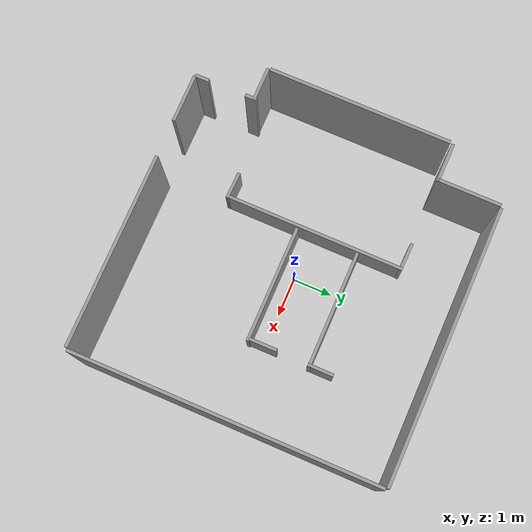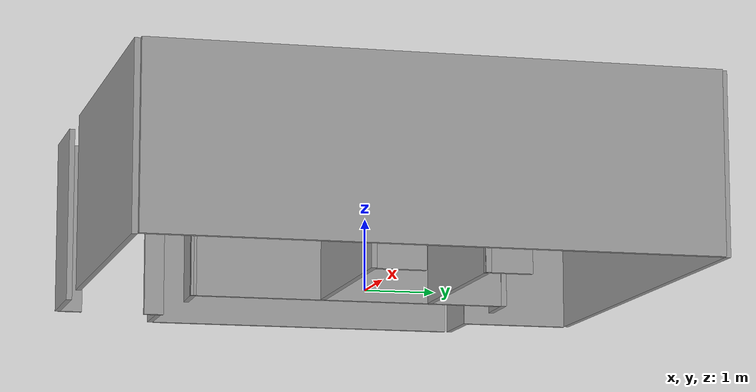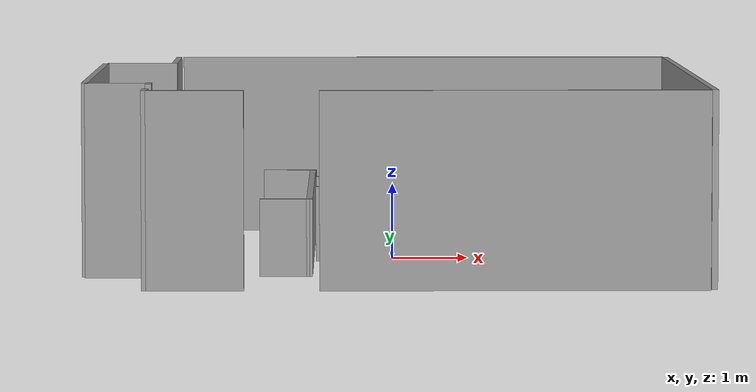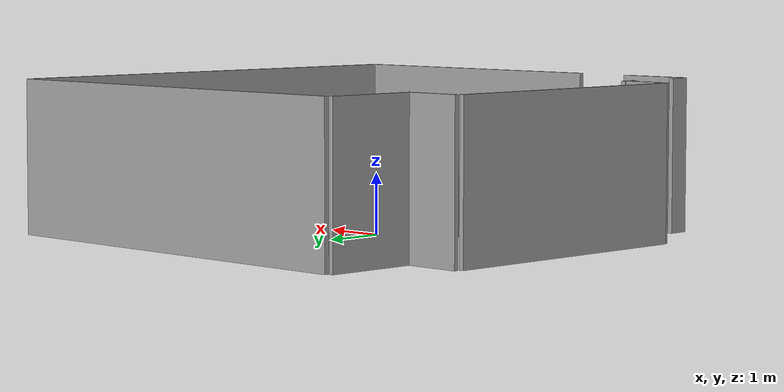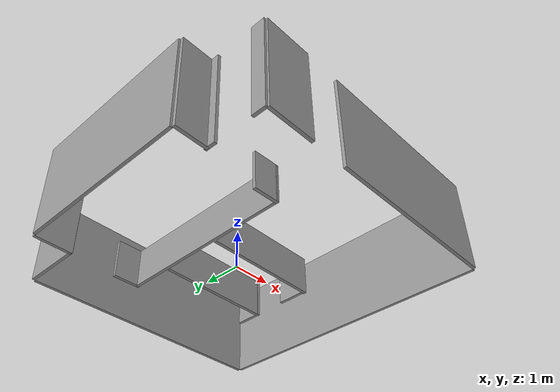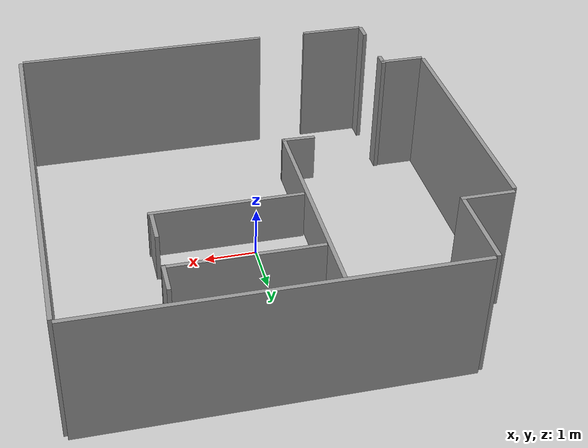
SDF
<?xml version='1.0'?>
<sdf version='1.7'>
  <model name='ApartamentoWalls'>
    <link name='Wall_0'>
      <pose>-1.40317 2.35195 0 0 0 -0.026231</pose>
      <self_collide>0</self_collide>
      <enable_wind>0</enable_wind>
      <kinematic>0</kinematic>
      <visual name='Wall_0_Visual'>
        <pose>0 0 0.5 0 -0 0</pose>
        <geometry>
          <box>
            <size>0.73 0.08 1</size>
          </box>
        </geometry>
        <material>
          <script>
            <uri>file://media/materials/scripts/gazebo.material</uri>
            <name>Gazebo/Grey</name>
          </script>
          <ambient>1 1 1 1</ambient>
          <shader type='pixel'/>
        </material>
        <meta>
          <layer>0</layer>
        </meta>
        <transparency>0</transparency>
        <cast_shadows>1</cast_shadows>
      </visual>
      <collision name='Wall_0_Collision'>
        <laser_retro>0</laser_retro>
        <max_contacts>10</max_contacts>
        <pose>0 0 0.5 0 -0 0</pose>
        <geometry>
          <box>
            <size>0.73 0.08 1</size>
          </box>
        </geometry>
        <surface>
          <friction>
            <ode>
              <mu>1</mu>
              <mu2>1</mu2>
              <fdir1>0 0 0</fdir1>
              <slip1>0</slip1>
              <slip2>0</slip2>
            </ode>
            <torsional>
              <coefficient>1</coefficient>
              <patch_radius>0</patch_radius>
              <surface_radius>0</surface_radius>
              <use_patch_radius>1</use_patch_radius>
              <ode>
                <slip>0</slip>
              </ode>
            </torsional>
          </friction>
          <bounce>
            <restitution_coefficient>0</restitution_coefficient>
            <threshold>1e+06</threshold>
          </bounce>
          <contact>
            <collide_without_contact>0</collide_without_contact>
            <collide_without_contact_bitmask>1</collide_without_contact_bitmask>
            <collide_bitmask>1</collide_bitmask>
            <ode>
              <soft_cfm>0</soft_cfm>
              <soft_erp>0.2</soft_erp>
              <kp>1e+13</kp>
              <kd>1</kd>
              <max_vel>0.01</max_vel>
              <min_depth>0</min_depth>
            </ode>
            <bullet>
              <split_impulse>1</split_impulse>
              <split_impulse_penetration_threshold>-0.01</split_impulse_penetration_threshold>
              <soft_cfm>0</soft_cfm>
              <soft_erp>0.2</soft_erp>
              <kp>1e+13</kp>
              <kd>1</kd>
            </bullet>
          </contact>
        </surface>
      </collision>
    </link>
    <link name='Wall_13'>
      <pose>1.93554 0.013256 0 0 0 -1.5708</pose>
      <self_collide>0</self_collide>
      <enable_wind>0</enable_wind>
      <kinematic>0</kinematic>
      <visual name='Wall_13_Visual'>
        <pose>0 0 0.5 0 -0 0</pose>
        <geometry>
          <box>
            <size>0.72 0.08 1</size>
          </box>
        </geometry>
        <material>
          <script>
            <uri>file://media/materials/scripts/gazebo.material</uri>
            <name>Gazebo/Grey</name>
          </script>
          <ambient>1 1 1 1</ambient>
          <shader type='pixel'/>
        </material>
        <meta>
          <layer>0</layer>
        </meta>
        <transparency>0</transparency>
        <cast_shadows>1</cast_shadows>
      </visual>
      <collision name='Wall_13_Collision'>
        <laser_retro>0</laser_retro>
        <max_contacts>10</max_contacts>
        <pose>0 0 0.5 0 -0 0</pose>
        <geometry>
          <box>
            <size>0.72 0.08 1</size>
          </box>
        </geometry>
        <surface>
          <friction>
            <ode>
              <mu>1</mu>
              <mu2>1</mu2>
              <fdir1>0 0 0</fdir1>
              <slip1>0</slip1>
              <slip2>0</slip2>
            </ode>
            <torsional>
              <coefficient>1</coefficient>
              <patch_radius>0</patch_radius>
              <surface_radius>0</surface_radius>
              <use_patch_radius>1</use_patch_radius>
              <ode>
                <slip>0</slip>
              </ode>
            </torsional>
          </friction>
          <bounce>
            <restitution_coefficient>0</restitution_coefficient>
            <threshold>1e+06</threshold>
          </bounce>
          <contact>
            <collide_without_contact>0</collide_without_contact>
            <collide_without_contact_bitmask>1</collide_without_contact_bitmask>
            <collide_bitmask>1</collide_bitmask>
            <ode>
              <soft_cfm>0</soft_cfm>
              <soft_erp>0.2</soft_erp>
              <kp>1e+13</kp>
              <kd>1</kd>
              <max_vel>0.01</max_vel>
              <min_depth>0</min_depth>
            </ode>
            <bullet>
              <split_impulse>1</split_impulse>
              <split_impulse_penetration_threshold>-0.01</split_impulse_penetration_threshold>
              <soft_cfm>0</soft_cfm>
              <soft_erp>0.2</soft_erp>
              <kp>1e+13</kp>
              <kd>1</kd>
            </bullet>
          </contact>
        </surface>
      </collision>
    </link>
    <link name='Wall_15'>
      <pose>1.95294 1.51652 0 0 0 -1.5708</pose>
      <self_collide>0</self_collide>
      <enable_wind>0</enable_wind>
      <kinematic>0</kinematic>
      <visual name='Wall_15_Visual'>
        <pose>0 0 0.5 0 -0 0</pose>
        <geometry>
          <box>
            <size>0.67 0.08 1</size>
          </box>
        </geometry>
        <material>
          <script>
            <uri>file://media/materials/scripts/gazebo.material</uri>
            <name>Gazebo/Grey</name>
          </script>
          <ambient>1 1 1 1</ambient>
          <shader type='pixel'/>
        </material>
        <meta>
          <layer>0</layer>
        </meta>
        <transparency>0</transparency>
        <cast_shadows>1</cast_shadows>
      </visual>
      <collision name='Wall_15_Collision'>
        <laser_retro>0</laser_retro>
        <max_contacts>10</max_contacts>
        <pose>0 0 0.5 0 -0 0</pose>
        <geometry>
          <box>
            <size>0.67 0.08 1</size>
          </box>
        </geometry>
        <surface>
          <friction>
            <ode>
              <mu>1</mu>
              <mu2>1</mu2>
              <fdir1>0 0 0</fdir1>
              <slip1>0</slip1>
              <slip2>0</slip2>
            </ode>
            <torsional>
              <coefficient>1</coefficient>
              <patch_radius>0</patch_radius>
              <surface_radius>0</surface_radius>
              <use_patch_radius>1</use_patch_radius>
              <ode>
                <slip>0</slip>
              </ode>
            </torsional>
          </friction>
          <bounce>
            <restitution_coefficient>0</restitution_coefficient>
            <threshold>1e+06</threshold>
          </bounce>
          <contact>
            <collide_without_contact>0</collide_without_contact>
            <collide_without_contact_bitmask>1</collide_without_contact_bitmask>
            <collide_bitmask>1</collide_bitmask>
            <ode>
              <soft_cfm>0</soft_cfm>
              <soft_erp>0.2</soft_erp>
              <kp>1e+13</kp>
              <kd>1</kd>
              <max_vel>0.01</max_vel>
              <min_depth>0</min_depth>
            </ode>
            <bullet>
              <split_impulse>1</split_impulse>
              <split_impulse_penetration_threshold>-0.01</split_impulse_penetration_threshold>
              <soft_cfm>0</soft_cfm>
              <soft_erp>0.2</soft_erp>
              <kp>1e+13</kp>
              <kd>1</kd>
            </bullet>
          </contact>
        </surface>
      </collision>
    </link>
    <link name='Wall_17'>
      <pose>-3.46581 2.32422 0 0 -0 0</pose>
      <self_collide>0</self_collide>
      <enable_wind>0</enable_wind>
      <kinematic>0</kinematic>
      <visual name='Wall_17_Visual'>
        <pose>0 0 1.25 0 -0 0</pose>
        <geometry>
          <box>
            <size>0.97 0.08 2.5</size>
          </box>
        </geometry>
        <material>
          <script>
            <uri>file://media/materials/scripts/gazebo.material</uri>
            <name>Gazebo/Grey</name>
          </script>
          <ambient>1 1 1 1</ambient>
          <shader type='pixel'/>
        </material>
        <meta>
          <layer>0</layer>
        </meta>
        <transparency>0</transparency>
        <cast_shadows>1</cast_shadows>
      </visual>
      <collision name='Wall_17_Collision'>
        <laser_retro>0</laser_retro>
        <max_contacts>10</max_contacts>
        <pose>0 0 1.25 0 -0 0</pose>
        <geometry>
          <box>
            <size>0.97 0.08 2.5</size>
          </box>
        </geometry>
        <surface>
          <friction>
            <ode>
              <mu>1</mu>
              <mu2>1</mu2>
              <fdir1>0 0 0</fdir1>
              <slip1>0</slip1>
              <slip2>0</slip2>
            </ode>
            <torsional>
              <coefficient>1</coefficient>
              <patch_radius>0</patch_radius>
              <surface_radius>0</surface_radius>
              <use_patch_radius>1</use_patch_radius>
              <ode>
                <slip>0</slip>
              </ode>
            </torsional>
          </friction>
          <bounce>
            <restitution_coefficient>0</restitution_coefficient>
            <threshold>1e+06</threshold>
          </bounce>
          <contact>
            <collide_without_contact>0</collide_without_contact>
            <collide_without_contact_bitmask>1</collide_without_contact_bitmask>
            <collide_bitmask>1</collide_bitmask>
            <ode>
              <soft_cfm>0</soft_cfm>
              <soft_erp>0.2</soft_erp>
              <kp>1e+13</kp>
              <kd>1</kd>
              <max_vel>0.01</max_vel>
              <min_depth>0</min_depth>
            </ode>
            <bullet>
              <split_impulse>1</split_impulse>
              <split_impulse_penetration_threshold>-0.01</split_impulse_penetration_threshold>
              <soft_cfm>0</soft_cfm>
              <soft_erp>0.2</soft_erp>
              <kp>1e+13</kp>
              <kd>1</kd>
            </bullet>
          </contact>
        </surface>
      </collision>
    </link>
    <link name='Wall_19'>
      <pose>-3.01516 3.08596 0 0 0 -1.5708</pose>
      <self_collide>0</self_collide>
      <enable_wind>0</enable_wind>
      <kinematic>0</kinematic>
      <visual name='Wall_19_Visual'>
        <pose>0 0 1.25 0 -0 0</pose>
        <geometry>
          <box>
            <size>1.6 0.08 2.5</size>
          </box>
        </geometry>
        <material>
          <script>
            <uri>file://media/materials/scripts/gazebo.material</uri>
            <name>Gazebo/Grey</name>
          </script>
          <ambient>1 1 1 1</ambient>
          <shader type='pixel'/>
        </material>
        <meta>
          <layer>0</layer>
        </meta>
        <transparency>0</transparency>
        <cast_shadows>1</cast_shadows>
      </visual>
      <collision name='Wall_19_Collision'>
        <laser_retro>0</laser_retro>
        <max_contacts>10</max_contacts>
        <pose>0 0 1.25 0 -0 0</pose>
        <geometry>
          <box>
            <size>1.6 0.08 2.5</size>
          </box>
        </geometry>
        <surface>
          <friction>
            <ode>
              <mu>1</mu>
              <mu2>1</mu2>
              <fdir1>0 0 0</fdir1>
              <slip1>0</slip1>
              <slip2>0</slip2>
            </ode>
            <torsional>
              <coefficient>1</coefficient>
              <patch_radius>0</patch_radius>
              <surface_radius>0</surface_radius>
              <use_patch_radius>1</use_patch_radius>
              <ode>
                <slip>0</slip>
              </ode>
            </torsional>
          </friction>
          <bounce>
            <restitution_coefficient>0</restitution_coefficient>
            <threshold>1e+06</threshold>
          </bounce>
          <contact>
            <collide_without_contact>0</collide_without_contact>
            <collide_without_contact_bitmask>1</collide_without_contact_bitmask>
            <collide_bitmask>1</collide_bitmask>
            <ode>
              <soft_cfm>0</soft_cfm>
              <soft_erp>0.2</soft_erp>
              <kp>1e+13</kp>
              <kd>1</kd>
              <max_vel>0.01</max_vel>
              <min_depth>0</min_depth>
            </ode>
            <bullet>
              <split_impulse>1</split_impulse>
              <split_impulse_penetration_threshold>-0.01</split_impulse_penetration_threshold>
              <soft_cfm>0</soft_cfm>
              <soft_erp>0.2</soft_erp>
              <kp>1e+13</kp>
              <kd>1</kd>
            </bullet>
          </contact>
        </surface>
      </collision>
    </link>
    <link name='Wall_2'>
      <pose>-1.39488 -2.2417 0 0 0 -0.029061</pose>
      <self_collide>0</self_collide>
      <enable_wind>0</enable_wind>
      <kinematic>0</kinematic>
      <visual name='Wall_2_Visual'>
        <pose>0 0 0.5 0 -0 0</pose>
        <geometry>
          <box>
            <size>0.681358 0.08 1</size>
          </box>
        </geometry>
        <material>
          <script>
            <uri>file://media/materials/scripts/gazebo.material</uri>
            <name>Gazebo/Grey</name>
          </script>
          <ambient>1 1 1 1</ambient>
          <shader type='pixel'/>
        </material>
        <meta>
          <layer>0</layer>
        </meta>
        <transparency>0</transparency>
        <cast_shadows>1</cast_shadows>
      </visual>
      <collision name='Wall_2_Collision'>
        <laser_retro>0</laser_retro>
        <max_contacts>10</max_contacts>
        <pose>0 0 0.5 0 -0 0</pose>
        <geometry>
          <box>
            <size>0.681358 0.08 1</size>
          </box>
        </geometry>
        <surface>
          <friction>
            <ode>
              <mu>1</mu>
              <mu2>1</mu2>
              <fdir1>0 0 0</fdir1>
              <slip1>0</slip1>
              <slip2>0</slip2>
            </ode>
            <torsional>
              <coefficient>1</coefficient>
              <patch_radius>0</patch_radius>
              <surface_radius>0</surface_radius>
              <use_patch_radius>1</use_patch_radius>
              <ode>
                <slip>0</slip>
              </ode>
            </torsional>
          </friction>
          <bounce>
            <restitution_coefficient>0</restitution_coefficient>
            <threshold>1e+06</threshold>
          </bounce>
          <contact>
            <collide_without_contact>0</collide_without_contact>
            <collide_without_contact_bitmask>1</collide_without_contact_bitmask>
            <collide_bitmask>1</collide_bitmask>
            <ode>
              <soft_cfm>0</soft_cfm>
              <soft_erp>0.2</soft_erp>
              <kp>1e+13</kp>
              <kd>1</kd>
              <max_vel>0.01</max_vel>
              <min_depth>0</min_depth>
            </ode>
            <bullet>
              <split_impulse>1</split_impulse>
              <split_impulse_penetration_threshold>-0.01</split_impulse_penetration_threshold>
              <soft_cfm>0</soft_cfm>
              <soft_erp>0.2</soft_erp>
              <kp>1e+13</kp>
              <kd>1</kd>
            </bullet>
          </contact>
        </surface>
      </collision>
    </link>
    <link name='Wall_22'>
      <pose>0.496584 3.90991 0 0 -0 3.14159</pose>
      <self_collide>0</self_collide>
      <enable_wind>0</enable_wind>
      <kinematic>0</kinematic>
      <visual name='Wall_22_Visual'>
        <pose>0 0 1.25 0 -0 0</pose>
        <geometry>
          <box>
            <size>6.9 0.08 2.5</size>
          </box>
        </geometry>
        <material>
          <script>
            <uri>file://media/materials/scripts/gazebo.material</uri>
            <name>Gazebo/Grey</name>
          </script>
          <ambient>1 1 1 1</ambient>
          <shader type='pixel'/>
        </material>
        <meta>
          <layer>0</layer>
        </meta>
        <transparency>0</transparency>
        <cast_shadows>1</cast_shadows>
      </visual>
      <collision name='Wall_22_Collision'>
        <laser_retro>0</laser_retro>
        <max_contacts>10</max_contacts>
        <pose>0 0 1.25 0 -0 0</pose>
        <geometry>
          <box>
            <size>6.9 0.08 2.5</size>
          </box>
        </geometry>
        <surface>
          <friction>
            <ode>
              <mu>1</mu>
              <mu2>1</mu2>
              <fdir1>0 0 0</fdir1>
              <slip1>0</slip1>
              <slip2>0</slip2>
            </ode>
            <torsional>
              <coefficient>1</coefficient>
              <patch_radius>0</patch_radius>
              <surface_radius>0</surface_radius>
              <use_patch_radius>1</use_patch_radius>
              <ode>
                <slip>0</slip>
              </ode>
            </torsional>
          </friction>
          <bounce>
            <restitution_coefficient>0</restitution_coefficient>
            <threshold>1e+06</threshold>
          </bounce>
          <contact>
            <collide_without_contact>0</collide_without_contact>
            <collide_without_contact_bitmask>1</collide_without_contact_bitmask>
            <collide_bitmask>1</collide_bitmask>
            <ode>
              <soft_cfm>0</soft_cfm>
              <soft_erp>0.2</soft_erp>
              <kp>1e+13</kp>
              <kd>1</kd>
              <max_vel>0.01</max_vel>
              <min_depth>0</min_depth>
            </ode>
            <bullet>
              <split_impulse>1</split_impulse>
              <split_impulse_penetration_threshold>-0.01</split_impulse_penetration_threshold>
              <soft_cfm>0</soft_cfm>
              <soft_erp>0.2</soft_erp>
              <kp>1e+13</kp>
              <kd>1</kd>
            </bullet>
          </contact>
        </surface>
      </collision>
    </link>
    <link name='Wall_24'>
      <pose>3.97357 -0.001331 0 0 -0 1.5708</pose>
      <self_collide>0</self_collide>
      <enable_wind>0</enable_wind>
      <kinematic>0</kinematic>
      <visual name='Wall_24_Visual'>
        <pose>0 0 1.25 0 -0 0</pose>
        <geometry>
          <box>
            <size>7.73 0.08 2.5</size>
          </box>
        </geometry>
        <material>
          <script>
            <uri>file://media/materials/scripts/gazebo.material</uri>
            <name>Gazebo/Grey</name>
          </script>
          <ambient>1 1 1 1</ambient>
          <shader type='pixel'/>
        </material>
        <meta>
          <layer>0</layer>
        </meta>
        <transparency>0</transparency>
        <cast_shadows>1</cast_shadows>
      </visual>
      <collision name='Wall_24_Collision'>
        <laser_retro>0</laser_retro>
        <max_contacts>10</max_contacts>
        <pose>0 0 1.25 0 -0 0</pose>
        <geometry>
          <box>
            <size>7.73 0.08 2.5</size>
          </box>
        </geometry>
        <surface>
          <friction>
            <ode>
              <mu>1</mu>
              <mu2>1</mu2>
              <fdir1>0 0 0</fdir1>
              <slip1>0</slip1>
              <slip2>0</slip2>
            </ode>
            <torsional>
              <coefficient>1</coefficient>
              <patch_radius>0</patch_radius>
              <surface_radius>0</surface_radius>
              <use_patch_radius>1</use_patch_radius>
              <ode>
                <slip>0</slip>
              </ode>
            </torsional>
          </friction>
          <bounce>
            <restitution_coefficient>0</restitution_coefficient>
            <threshold>1e+06</threshold>
          </bounce>
          <contact>
            <collide_without_contact>0</collide_without_contact>
            <collide_without_contact_bitmask>1</collide_without_contact_bitmask>
            <collide_bitmask>1</collide_bitmask>
            <ode>
              <soft_cfm>0</soft_cfm>
              <soft_erp>0.2</soft_erp>
              <kp>1e+13</kp>
              <kd>1</kd>
              <max_vel>0.01</max_vel>
              <min_depth>0</min_depth>
            </ode>
            <bullet>
              <split_impulse>1</split_impulse>
              <split_impulse_penetration_threshold>-0.01</split_impulse_penetration_threshold>
              <soft_cfm>0</soft_cfm>
              <soft_erp>0.2</soft_erp>
              <kp>1e+13</kp>
              <kd>1</kd>
            </bullet>
          </contact>
        </surface>
      </collision>
    </link>
    <link name='Wall_26'>
      <pose>1.48357 -3.90633 0 0 -0 0</pose>
      <self_collide>0</self_collide>
      <enable_wind>0</enable_wind>
      <kinematic>0</kinematic>
      <visual name='Wall_26_Visual'>
        <pose>0 0 1.25 0 -0 0</pose>
        <geometry>
          <box>
            <size>4.88 0.08 2.5</size>
          </box>
        </geometry>
        <material>
          <script>
            <uri>file://media/materials/scripts/gazebo.material</uri>
            <name>Gazebo/Grey</name>
          </script>
          <ambient>1 1 1 1</ambient>
          <shader type='pixel'/>
        </material>
        <meta>
          <layer>0</layer>
        </meta>
        <transparency>0</transparency>
        <cast_shadows>1</cast_shadows>
      </visual>
      <collision name='Wall_26_Collision'>
        <laser_retro>0</laser_retro>
        <max_contacts>10</max_contacts>
        <pose>0 0 1.25 0 -0 0</pose>
        <geometry>
          <box>
            <size>4.88 0.08 2.5</size>
          </box>
        </geometry>
        <surface>
          <friction>
            <ode>
              <mu>1</mu>
              <mu2>1</mu2>
              <fdir1>0 0 0</fdir1>
              <slip1>0</slip1>
              <slip2>0</slip2>
            </ode>
            <torsional>
              <coefficient>1</coefficient>
              <patch_radius>0</patch_radius>
              <surface_radius>0</surface_radius>
              <use_patch_radius>1</use_patch_radius>
              <ode>
                <slip>0</slip>
              </ode>
            </torsional>
          </friction>
          <bounce>
            <restitution_coefficient>0</restitution_coefficient>
            <threshold>1e+06</threshold>
          </bounce>
          <contact>
            <collide_without_contact>0</collide_without_contact>
            <collide_without_contact_bitmask>1</collide_without_contact_bitmask>
            <collide_bitmask>1</collide_bitmask>
            <ode>
              <soft_cfm>0</soft_cfm>
              <soft_erp>0.2</soft_erp>
              <kp>1e+13</kp>
              <kd>1</kd>
              <max_vel>0.01</max_vel>
              <min_depth>0</min_depth>
            </ode>
            <bullet>
              <split_impulse>1</split_impulse>
              <split_impulse_penetration_threshold>-0.01</split_impulse_penetration_threshold>
              <soft_cfm>0</soft_cfm>
              <soft_erp>0.2</soft_erp>
              <kp>1e+13</kp>
              <kd>1</kd>
            </bullet>
          </contact>
        </surface>
      </collision>
    </link>
    <link name='Wall_28'>
      <pose>-2.50657 -3.90991 0 0 -0 0</pose>
      <self_collide>0</self_collide>
      <enable_wind>0</enable_wind>
      <kinematic>0</kinematic>
      <visual name='Wall_28_Visual'>
        <pose>0 0 1.25 0 -0 0</pose>
        <geometry>
          <box>
            <size>1.22 0.08 2.5</size>
          </box>
        </geometry>
        <material>
          <script>
            <uri>file://media/materials/scripts/gazebo.material</uri>
            <name>Gazebo/Grey</name>
          </script>
          <ambient>1 1 1 1</ambient>
          <shader type='pixel'/>
        </material>
        <meta>
          <layer>0</layer>
        </meta>
        <transparency>0</transparency>
        <cast_shadows>1</cast_shadows>
      </visual>
      <collision name='Wall_28_Collision'>
        <laser_retro>0</laser_retro>
        <max_contacts>10</max_contacts>
        <pose>0 0 1.25 0 -0 0</pose>
        <geometry>
          <box>
            <size>1.22 0.08 2.5</size>
          </box>
        </geometry>
        <surface>
          <friction>
            <ode>
              <mu>1</mu>
              <mu2>1</mu2>
              <fdir1>0 0 0</fdir1>
              <slip1>0</slip1>
              <slip2>0</slip2>
            </ode>
            <torsional>
              <coefficient>1</coefficient>
              <patch_radius>0</patch_radius>
              <surface_radius>0</surface_radius>
              <use_patch_radius>1</use_patch_radius>
              <ode>
                <slip>0</slip>
              </ode>
            </torsional>
          </friction>
          <bounce>
            <restitution_coefficient>0</restitution_coefficient>
            <threshold>1e+06</threshold>
          </bounce>
          <contact>
            <collide_without_contact>0</collide_without_contact>
            <collide_without_contact_bitmask>1</collide_without_contact_bitmask>
            <collide_bitmask>1</collide_bitmask>
            <ode>
              <soft_cfm>0</soft_cfm>
              <soft_erp>0.2</soft_erp>
              <kp>1e+13</kp>
              <kd>1</kd>
              <max_vel>0.01</max_vel>
              <min_depth>0</min_depth>
            </ode>
            <bullet>
              <split_impulse>1</split_impulse>
              <split_impulse_penetration_threshold>-0.01</split_impulse_penetration_threshold>
              <soft_cfm>0</soft_cfm>
              <soft_erp>0.2</soft_erp>
              <kp>1e+13</kp>
              <kd>1</kd>
            </bullet>
          </contact>
        </surface>
      </collision>
    </link>
    <link name='Wall_30'>
      <pose>-3.13407 -3.72892 0 0 -0 1.5708</pose>
      <self_collide>0</self_collide>
      <enable_wind>0</enable_wind>
      <kinematic>0</kinematic>
      <visual name='Wall_30_Visual'>
        <pose>0 0 1.25 0 -0 0</pose>
        <geometry>
          <box>
            <size>0.35 0.08 2.5</size>
          </box>
        </geometry>
        <material>
          <script>
            <uri>file://media/materials/scripts/gazebo.material</uri>
            <name>Gazebo/Grey</name>
          </script>
          <ambient>1 1 1 1</ambient>
          <shader type='pixel'/>
        </material>
        <meta>
          <layer>0</layer>
        </meta>
        <transparency>0</transparency>
        <cast_shadows>1</cast_shadows>
      </visual>
      <collision name='Wall_30_Collision'>
        <laser_retro>0</laser_retro>
        <max_contacts>10</max_contacts>
        <pose>0 0 1.25 0 -0 0</pose>
        <geometry>
          <box>
            <size>0.35 0.08 2.5</size>
          </box>
        </geometry>
        <surface>
          <friction>
            <ode>
              <mu>1</mu>
              <mu2>1</mu2>
              <fdir1>0 0 0</fdir1>
              <slip1>0</slip1>
              <slip2>0</slip2>
            </ode>
            <torsional>
              <coefficient>1</coefficient>
              <patch_radius>0</patch_radius>
              <surface_radius>0</surface_radius>
              <use_patch_radius>1</use_patch_radius>
              <ode>
                <slip>0</slip>
              </ode>
            </torsional>
          </friction>
          <bounce>
            <restitution_coefficient>0</restitution_coefficient>
            <threshold>1e+06</threshold>
          </bounce>
          <contact>
            <collide_without_contact>0</collide_without_contact>
            <collide_without_contact_bitmask>1</collide_without_contact_bitmask>
            <collide_bitmask>1</collide_bitmask>
            <ode>
              <soft_cfm>0</soft_cfm>
              <soft_erp>0.2</soft_erp>
              <kp>1e+13</kp>
              <kd>1</kd>
              <max_vel>0.01</max_vel>
              <min_depth>0</min_depth>
            </ode>
            <bullet>
              <split_impulse>1</split_impulse>
              <split_impulse_penetration_threshold>-0.01</split_impulse_penetration_threshold>
              <soft_cfm>0</soft_cfm>
              <soft_erp>0.2</soft_erp>
              <kp>1e+13</kp>
              <kd>1</kd>
            </bullet>
          </contact>
        </surface>
      </collision>
    </link>
    <link name='Wall_32'>
      <pose>-3.14557 -2.47391 0 0 0 -1.5708</pose>
      <self_collide>0</self_collide>
      <enable_wind>0</enable_wind>
      <kinematic>0</kinematic>
      <visual name='Wall_32_Visual'>
        <pose>0 0 1.25 0 -0 0</pose>
        <geometry>
          <box>
            <size>0.29 0.08 2.5</size>
          </box>
        </geometry>
        <material>
          <script>
            <uri>file://media/materials/scripts/gazebo.material</uri>
            <name>Gazebo/Grey</name>
          </script>
          <ambient>1 1 1 1</ambient>
          <shader type='pixel'/>
        </material>
        <meta>
          <layer>0</layer>
        </meta>
        <transparency>0</transparency>
        <cast_shadows>1</cast_shadows>
      </visual>
      <collision name='Wall_32_Collision'>
        <laser_retro>0</laser_retro>
        <max_contacts>10</max_contacts>
        <pose>0 0 1.25 0 -0 0</pose>
        <geometry>
          <box>
            <size>0.29 0.08 2.5</size>
          </box>
        </geometry>
        <surface>
          <friction>
            <ode>
              <mu>1</mu>
              <mu2>1</mu2>
              <fdir1>0 0 0</fdir1>
              <slip1>0</slip1>
              <slip2>0</slip2>
            </ode>
            <torsional>
              <coefficient>1</coefficient>
              <patch_radius>0</patch_radius>
              <surface_radius>0</surface_radius>
              <use_patch_radius>1</use_patch_radius>
              <ode>
                <slip>0</slip>
              </ode>
            </torsional>
          </friction>
          <bounce>
            <restitution_coefficient>0</restitution_coefficient>
            <threshold>1e+06</threshold>
          </bounce>
          <contact>
            <collide_without_contact>0</collide_without_contact>
            <collide_without_contact_bitmask>1</collide_without_contact_bitmask>
            <collide_bitmask>1</collide_bitmask>
            <ode>
              <soft_cfm>0</soft_cfm>
              <soft_erp>0.2</soft_erp>
              <kp>1e+13</kp>
              <kd>1</kd>
              <max_vel>0.01</max_vel>
              <min_depth>0</min_depth>
            </ode>
            <bullet>
              <split_impulse>1</split_impulse>
              <split_impulse_penetration_threshold>-0.01</split_impulse_penetration_threshold>
              <soft_cfm>0</soft_cfm>
              <soft_erp>0.2</soft_erp>
              <kp>1e+13</kp>
              <kd>1</kd>
            </bullet>
          </contact>
        </surface>
      </collision>
    </link>
    <link name='Wall_34'>
      <pose>-3.97357 -0.044915 0 0 -0 1.5708</pose>
      <self_collide>0</self_collide>
      <enable_wind>0</enable_wind>
      <kinematic>0</kinematic>
      <visual name='Wall_34_Visual'>
        <pose>0 0 1.25 0 -0 0</pose>
        <geometry>
          <box>
            <size>4.59 0.08 2.5</size>
          </box>
        </geometry>
        <material>
          <script>
            <uri>file://media/materials/scripts/gazebo.material</uri>
            <name>Gazebo/Grey</name>
          </script>
          <ambient>1 1 1 1</ambient>
          <shader type='pixel'/>
        </material>
        <meta>
          <layer>0</layer>
        </meta>
        <transparency>0</transparency>
        <cast_shadows>1</cast_shadows>
      </visual>
      <collision name='Wall_34_Collision'>
        <laser_retro>0</laser_retro>
        <max_contacts>10</max_contacts>
        <pose>0 0 1.25 0 -0 0</pose>
        <geometry>
          <box>
            <size>4.59 0.08 2.5</size>
          </box>
        </geometry>
        <surface>
          <friction>
            <ode>
              <mu>1</mu>
              <mu2>1</mu2>
              <fdir1>0 0 0</fdir1>
              <slip1>0</slip1>
              <slip2>0</slip2>
            </ode>
            <torsional>
              <coefficient>1</coefficient>
              <patch_radius>0</patch_radius>
              <surface_radius>0</surface_radius>
              <use_patch_radius>1</use_patch_radius>
              <ode>
                <slip>0</slip>
              </ode>
            </torsional>
          </friction>
          <bounce>
            <restitution_coefficient>0</restitution_coefficient>
            <threshold>1e+06</threshold>
          </bounce>
          <contact>
            <collide_without_contact>0</collide_without_contact>
            <collide_without_contact_bitmask>1</collide_without_contact_bitmask>
            <collide_bitmask>1</collide_bitmask>
            <ode>
              <soft_cfm>0</soft_cfm>
              <soft_erp>0.2</soft_erp>
              <kp>1e+13</kp>
              <kd>1</kd>
              <max_vel>0.01</max_vel>
              <min_depth>0</min_depth>
            </ode>
            <bullet>
              <split_impulse>1</split_impulse>
              <split_impulse_penetration_threshold>-0.01</split_impulse_penetration_threshold>
              <soft_cfm>0</soft_cfm>
              <soft_erp>0.2</soft_erp>
              <kp>1e+13</kp>
              <kd>1</kd>
            </bullet>
          </contact>
        </surface>
      </collision>
    </link>
    <link name='Wall_36'>
      <pose>-3.54757 -2.39192 0 0 -0 0</pose>
      <self_collide>0</self_collide>
      <enable_wind>0</enable_wind>
      <kinematic>0</kinematic>
      <visual name='Wall_36_Visual'>
        <pose>0 0 1.25 0 -0 0</pose>
        <geometry>
          <box>
            <size>0.84 0.08 2.5</size>
          </box>
        </geometry>
        <material>
          <script>
            <uri>file://media/materials/scripts/gazebo.material</uri>
            <name>Gazebo/Grey</name>
          </script>
          <ambient>1 1 1 1</ambient>
          <shader type='pixel'/>
        </material>
        <meta>
          <layer>0</layer>
        </meta>
        <transparency>0</transparency>
        <cast_shadows>1</cast_shadows>
      </visual>
      <collision name='Wall_36_Collision'>
        <laser_retro>0</laser_retro>
        <max_contacts>10</max_contacts>
        <pose>0 0 1.25 0 -0 0</pose>
        <geometry>
          <box>
            <size>0.84 0.08 2.5</size>
          </box>
        </geometry>
        <surface>
          <friction>
            <ode>
              <mu>1</mu>
              <mu2>1</mu2>
              <fdir1>0 0 0</fdir1>
              <slip1>0</slip1>
              <slip2>0</slip2>
            </ode>
            <torsional>
              <coefficient>1</coefficient>
              <patch_radius>0</patch_radius>
              <surface_radius>0</surface_radius>
              <use_patch_radius>1</use_patch_radius>
              <ode>
                <slip>0</slip>
              </ode>
            </torsional>
          </friction>
          <bounce>
            <restitution_coefficient>0</restitution_coefficient>
            <threshold>1e+06</threshold>
          </bounce>
          <contact>
            <collide_without_contact>0</collide_without_contact>
            <collide_without_contact_bitmask>1</collide_without_contact_bitmask>
            <collide_bitmask>1</collide_bitmask>
            <ode>
              <soft_cfm>0</soft_cfm>
              <soft_erp>0.2</soft_erp>
              <kp>1e+13</kp>
              <kd>1</kd>
              <max_vel>0.01</max_vel>
              <min_depth>0</min_depth>
            </ode>
            <bullet>
              <split_impulse>1</split_impulse>
              <split_impulse_penetration_threshold>-0.01</split_impulse_penetration_threshold>
              <soft_cfm>0</soft_cfm>
              <soft_erp>0.2</soft_erp>
              <kp>1e+13</kp>
              <kd>1</kd>
            </bullet>
          </contact>
        </surface>
      </collision>
    </link>
    <link name='Wall_4'>
      <pose>-1.09065 0.046493 0 0 0 -1.5724</pose>
      <self_collide>0</self_collide>
      <enable_wind>0</enable_wind>
      <kinematic>0</kinematic>
      <visual name='Wall_4_Visual'>
        <pose>0 0 0.5 0 -0 0</pose>
        <geometry>
          <box>
            <size>4.67389 0.08 1</size>
          </box>
        </geometry>
        <material>
          <script>
            <uri>file://media/materials/scripts/gazebo.material</uri>
            <name>Gazebo/Grey</name>
          </script>
          <ambient>1 1 1 1</ambient>
          <shader type='pixel'/>
        </material>
        <meta>
          <layer>0</layer>
        </meta>
        <transparency>0</transparency>
        <cast_shadows>1</cast_shadows>
      </visual>
      <collision name='Wall_4_Collision'>
        <laser_retro>0</laser_retro>
        <max_contacts>10</max_contacts>
        <pose>0 0 0.5 0 -0 0</pose>
        <geometry>
          <box>
            <size>4.67389 0.08 1</size>
          </box>
        </geometry>
        <surface>
          <friction>
            <ode>
              <mu>1</mu>
              <mu2>1</mu2>
              <fdir1>0 0 0</fdir1>
              <slip1>0</slip1>
              <slip2>0</slip2>
            </ode>
            <torsional>
              <coefficient>1</coefficient>
              <patch_radius>0</patch_radius>
              <surface_radius>0</surface_radius>
              <use_patch_radius>1</use_patch_radius>
              <ode>
                <slip>0</slip>
              </ode>
            </torsional>
          </friction>
          <bounce>
            <restitution_coefficient>0</restitution_coefficient>
            <threshold>1e+06</threshold>
          </bounce>
          <contact>
            <collide_without_contact>0</collide_without_contact>
            <collide_without_contact_bitmask>1</collide_without_contact_bitmask>
            <collide_bitmask>1</collide_bitmask>
            <ode>
              <soft_cfm>0</soft_cfm>
              <soft_erp>0.2</soft_erp>
              <kp>1e+13</kp>
              <kd>1</kd>
              <max_vel>0.01</max_vel>
              <min_depth>0</min_depth>
            </ode>
            <bullet>
              <split_impulse>1</split_impulse>
              <split_impulse_penetration_threshold>-0.01</split_impulse_penetration_threshold>
              <soft_cfm>0</soft_cfm>
              <soft_erp>0.2</soft_erp>
              <kp>1e+13</kp>
              <kd>1</kd>
            </bullet>
          </contact>
        </surface>
      </collision>
    </link>
    <link name='Wall_6'>
      <pose>0.480109 1.22891 0 0 -0 0</pose>
      <self_collide>0</self_collide>
      <enable_wind>0</enable_wind>
      <kinematic>0</kinematic>
      <visual name='Wall_6_Visual'>
        <pose>0 0 0.5 0 -0 0</pose>
        <geometry>
          <box>
            <size>3.03 0.08 1</size>
          </box>
        </geometry>
        <material>
          <script>
            <uri>file://media/materials/scripts/gazebo.material</uri>
            <name>Gazebo/Grey</name>
          </script>
          <ambient>1 1 1 1</ambient>
          <shader type='pixel'/>
        </material>
        <meta>
          <layer>0</layer>
        </meta>
        <transparency>0</transparency>
        <cast_shadows>1</cast_shadows>
      </visual>
      <collision name='Wall_6_Collision'>
        <laser_retro>0</laser_retro>
        <max_contacts>10</max_contacts>
        <pose>0 0 0.5 0 -0 0</pose>
        <geometry>
          <box>
            <size>3.03 0.08 1</size>
          </box>
        </geometry>
        <surface>
          <friction>
            <ode>
              <mu>1</mu>
              <mu2>1</mu2>
              <fdir1>0 0 0</fdir1>
              <slip1>0</slip1>
              <slip2>0</slip2>
            </ode>
            <torsional>
              <coefficient>1</coefficient>
              <patch_radius>0</patch_radius>
              <surface_radius>0</surface_radius>
              <use_patch_radius>1</use_patch_radius>
              <ode>
                <slip>0</slip>
              </ode>
            </torsional>
          </friction>
          <bounce>
            <restitution_coefficient>0</restitution_coefficient>
            <threshold>1e+06</threshold>
          </bounce>
          <contact>
            <collide_without_contact>0</collide_without_contact>
            <collide_without_contact_bitmask>1</collide_without_contact_bitmask>
            <collide_bitmask>1</collide_bitmask>
            <ode>
              <soft_cfm>0</soft_cfm>
              <soft_erp>0.2</soft_erp>
              <kp>1e+13</kp>
              <kd>1</kd>
              <max_vel>0.01</max_vel>
              <min_depth>0</min_depth>
            </ode>
            <bullet>
              <split_impulse>1</split_impulse>
              <split_impulse_penetration_threshold>-0.01</split_impulse_penetration_threshold>
              <soft_cfm>0</soft_cfm>
              <soft_erp>0.2</soft_erp>
              <kp>1e+13</kp>
              <kd>1</kd>
            </bullet>
          </contact>
        </surface>
      </collision>
    </link>
    <link name='Wall_8'>
      <pose>0.488805 -0.362397 0 0 -0 0</pose>
      <self_collide>0</self_collide>
      <enable_wind>0</enable_wind>
      <kinematic>0</kinematic>
      <visual name='Wall_8_Visual'>
        <pose>0 0 0.5 0 -0 0</pose>
        <geometry>
          <box>
            <size>3.03 0.08 1</size>
          </box>
        </geometry>
        <material>
          <script>
            <uri>file://media/materials/scripts/gazebo.material</uri>
            <name>Gazebo/Grey</name>
          </script>
          <ambient>1 1 1 1</ambient>
          <shader type='pixel'/>
        </material>
        <meta>
          <layer>0</layer>
        </meta>
        <transparency>0</transparency>
        <cast_shadows>1</cast_shadows>
      </visual>
      <collision name='Wall_8_Collision'>
        <laser_retro>0</laser_retro>
        <max_contacts>10</max_contacts>
        <pose>0 0 0.5 0 -0 0</pose>
        <geometry>
          <box>
            <size>3.03 0.08 1</size>
          </box>
        </geometry>
        <surface>
          <friction>
            <ode>
              <mu>1</mu>
              <mu2>1</mu2>
              <fdir1>0 0 0</fdir1>
              <slip1>0</slip1>
              <slip2>0</slip2>
            </ode>
            <torsional>
              <coefficient>1</coefficient>
              <patch_radius>0</patch_radius>
              <surface_radius>0</surface_radius>
              <use_patch_radius>1</use_patch_radius>
              <ode>
                <slip>0</slip>
              </ode>
            </torsional>
          </friction>
          <bounce>
            <restitution_coefficient>0</restitution_coefficient>
            <threshold>1e+06</threshold>
          </bounce>
          <contact>
            <collide_without_contact>0</collide_without_contact>
            <collide_without_contact_bitmask>1</collide_without_contact_bitmask>
            <collide_bitmask>1</collide_bitmask>
            <ode>
              <soft_cfm>0</soft_cfm>
              <soft_erp>0.2</soft_erp>
              <kp>1e+13</kp>
              <kd>1</kd>
              <max_vel>0.01</max_vel>
              <min_depth>0</min_depth>
            </ode>
            <bullet>
              <split_impulse>1</split_impulse>
              <split_impulse_penetration_threshold>-0.01</split_impulse_penetration_threshold>
              <soft_cfm>0</soft_cfm>
              <soft_erp>0.2</soft_erp>
              <kp>1e+13</kp>
              <kd>1</kd>
            </bullet>
          </contact>
        </surface>
      </collision>
    </link>
    <static>1</static>
    <allow_auto_disable>1</allow_auto_disable>
  </model>
</sdf>
